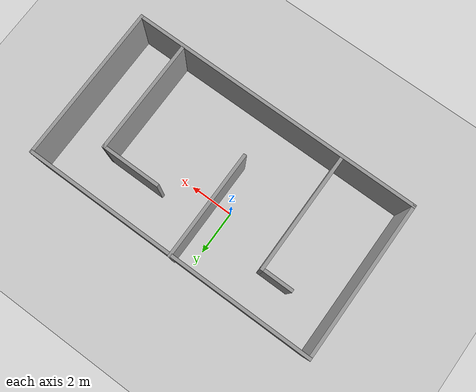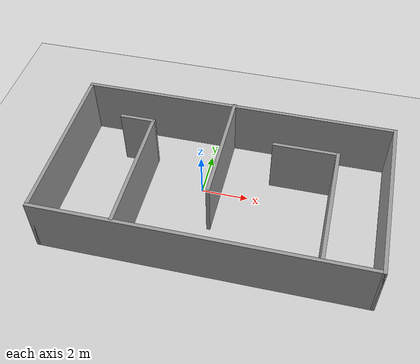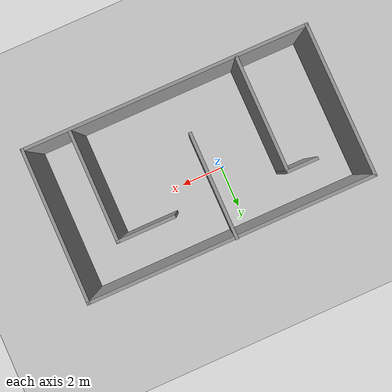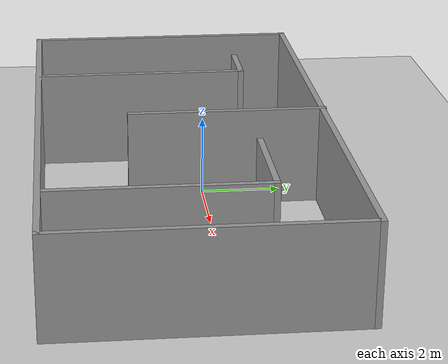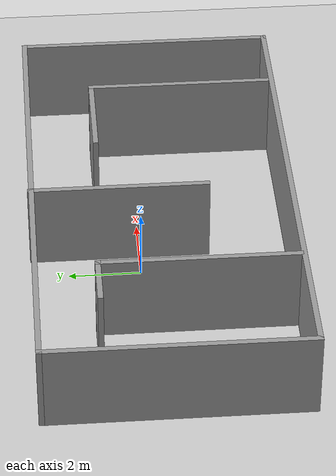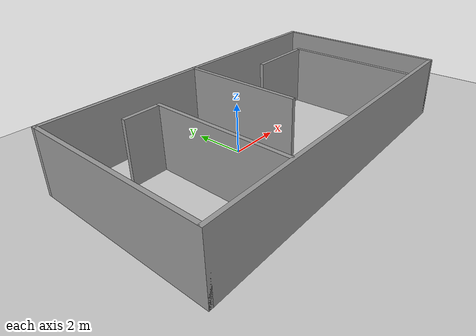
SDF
<sdf version="1.6">
 <world name="default">
  <scene><ambient>0.4 0.4 0.4 1</ambient><background>0.7 0.7 0.7 1</background><shadows>1</shadows></scene>
  <light name="sun" type="directional">
   <pose>0 0 10 0 -0 0</pose>
   <diffuse>0.8 0.8 0.8 1</diffuse>
   <specular>0.2 0.2 0.2 1</specular>
   <attenuation>
    <range>1000</range>
    <constant>0.9</constant>
    <linear>0.01</linear>
    <quadratic>0.001</quadratic>
   </attenuation>
   <direction>-0.5 0.1 -0.9</direction>
  </light>
  <model name="ground_plane">
   <static>1</static>
   <link name="link">
    <collision name="collision">
     <geometry><plane><normal>0 0 1</normal><size>100 100</size></plane></geometry>
     <surface>
      <contact><collide_bitmask>65535</collide_bitmask></contact>
      <friction><ode><mu>100</mu><mu2>50</mu2></ode></friction>
     </surface>
    </collision>
    <visual name="visual">
     <cast_shadows>0</cast_shadows>
     <geometry><plane><normal>0 0 1</normal><size>100 100</size></plane></geometry>
     <material>
      <script><uri>file://media/materials/scripts/gazebo.material</uri><name>Gazebo/Grey</name></script>
     </material>
    </visual>
   </link>
  </model>
  <physics name="default_physics" default="0" type="ode">
   <real_time_update_rate>1000</real_time_update_rate>
   <max_step_size>0.001</max_step_size>
   <real_time_factor>1</real_time_factor>
   <ode>
    <solver>
     <type>quick</type>
     <iters>150</iters>
     <precon_iters>0</precon_iters>
     <sor>1.4</sor>
     <use_dynamic_moi_rescaling>1</use_dynamic_moi_rescaling>
    </solver>
    <constraints>
     <cfm>1e-05</cfm>
     <erp>0.2</erp>
     <contact_max_correcting_vel>2000</contact_max_correcting_vel>
     <contact_surface_layer>0.01</contact_surface_layer>
    </constraints>
   </ode>
  </physics>
  <gravity>0 0 -9.8</gravity>
  <magnetic_field>6e-06 2.3e-05 -4.2e-05</magnetic_field>
  <atmosphere type="adiabatic"/>
  <audio><device>default</device></audio>
  <spherical_coordinates>
   <surface_model>EARTH_WGS84</surface_model>
   <latitude_deg>0</latitude_deg>
   <longitude_deg>0</longitude_deg>
   <elevation>0</elevation>
   <heading_deg>0</heading_deg>
  </spherical_coordinates>
  <model name="cmap1">
   <pose>0.935765 -0.595837 0 0 -0 0</pose>
   <link name="Wall_11">
    <collision name="Wall_11_Collision">
     <geometry><box><size>5 0.15 2.5</size></box></geometry>
     <pose>0 0 1.25 0 -0 0</pose>
    </collision>
    <visual name="Wall_11_Visual">
     <pose>0 0 1.25 0 -0 0</pose>
     <geometry><box><size>5 0.15 2.5</size></box></geometry>
     <material>
      <script><uri>file://media/materials/scripts/gazebo.material</uri><name>Gazebo/Grey</name></script>
      <ambient>1 1 1 1</ambient>
     </material>
     <meta><layer>0</layer></meta>
    </visual>
    <pose>-0.186641 1.14189 0 0 -0 -1.5708</pose>
   </link>
   <link name="Wall_13">
    <collision name="Wall_13_Collision">
     <geometry><box><size>5.5 0.15 2.5</size></box></geometry>
     <pose>0 0 1.25 0 -0 0</pose>
    </collision>
    <visual name="Wall_13_Visual">
     <pose>0 0 1.25 0 -0 0</pose>
     <geometry><box><size>5.5 0.15 2.5</size></box></geometry>
     <material>
      <script><uri>file://media/materials/scripts/gazebo.material</uri><name>Gazebo/Grey</name></script>
      <ambient>1 1 1 1</ambient>
     </material>
     <meta><layer>0</layer></meta>
    </visual>
    <pose>-3.33419 -0.793809 0 0 -0 1.5708</pose>
   </link>
   <link name="Wall_14">
    <collision name="Wall_14_Collision">
     <geometry><box><size>1.5 0.15 2.5</size></box></geometry>
     <pose>0 0 1.25 0 -0 0</pose>
    </collision>
    <visual name="Wall_14_Visual">
     <pose>0 0 1.25 0 -0 0</pose>
     <geometry><box><size>1.5 0.15 2.5</size></box></geometry>
     <material>
      <script><uri>file://media/materials/scripts/gazebo.material</uri><name>Gazebo/Grey</name></script>
      <ambient>1 1 1 1</ambient>
     </material>
     <meta><layer>0</layer></meta>
    </visual>
    <pose>-4.00919 1.88119 0 0 -0 3.14159</pose>
   </link>
   <link name="Wall_2">
    <collision name="Wall_2_Collision">
     <geometry><box><size>13.5 0.15 2.5</size></box></geometry>
     <pose>0 0 1.25 0 -0 0</pose>
    </collision>
    <visual name="Wall_2_Visual">
     <pose>0 0 1.25 0 -0 0</pose>
     <geometry><box><size>13.5 0.15 2.5</size></box></geometry>
     <material>
      <script><uri>file://media/materials/scripts/gazebo.material</uri><name>Gazebo/Grey</name></script>
      <ambient>1 1 1 1</ambient>
     </material>
     <meta><layer>0</layer></meta>
    </visual>
    <pose>0 3.53311 0 0 -0 3.14159</pose>
   </link>
   <link name="Wall_3">
    <collision name="Wall_3_Collision">
     <geometry><box><size>7.25 0.15 2.5</size></box></geometry>
     <pose>0 0 1.25 0 -0 0</pose>
    </collision>
    <visual name="Wall_3_Visual">
     <pose>0 0 1.25 0 -0 0</pose>
     <geometry><box><size>7.25 0.15 2.5</size></box></geometry>
     <material>
      <script><uri>file://media/materials/scripts/gazebo.material</uri><name>Gazebo/Grey</name></script>
      <ambient>1 1 1 1</ambient>
     </material>
     <meta><layer>0</layer></meta>
    </visual>
    <pose>-6.675 -0.01689 0 0 -0 -1.5708</pose>
   </link>
   <link name="Wall_4">
    <collision name="Wall_4_Collision">
     <geometry><box><size>13.5 0.15 2.5</size></box></geometry>
     <pose>0 0 1.25 0 -0 0</pose>
    </collision>
    <visual name="Wall_4_Visual">
     <pose>0 0 1.25 0 -0 0</pose>
     <geometry><box><size>13.5 0.15 2.5</size></box></geometry>
     <material>
      <script><uri>file://media/materials/scripts/gazebo.material</uri><name>Gazebo/Grey</name></script>
      <ambient>1 1 1 1</ambient>
     </material>
     <meta><layer>0</layer></meta>
    </visual>
    <pose>0 -3.56689 0 0 -0 0</pose>
   </link>
   <link name="Wall_5">
    <collision name="Wall_5_Collision">
     <geometry><box><size>7.25 0.15 2.5</size></box></geometry>
     <pose>0 0 1.25 0 -0 0</pose>
    </collision>
    <visual name="Wall_5_Visual">
     <pose>0 0 1.25 0 -0 0</pose>
     <geometry><box><size>7.25 0.15 2.5</size></box></geometry>
     <material>
      <script><uri>file://media/materials/scripts/gazebo.material</uri><name>Gazebo/Grey</name></script>
      <ambient>1 1 1 1</ambient>
     </material>
     <meta><layer>0</layer></meta>
    </visual>
    <pose>6.675 -0.01689 0 0 -0 1.5708</pose>
   </link>
   <link name="Wall_7">
    <collision name="Wall_7_Collision">
     <geometry><box><size>5.25 0.15 2.5</size></box></geometry>
     <pose>0 0 1.25 0 -0 0</pose>
    </collision>
    <visual name="Wall_7_Visual">
     <pose>0 0 1.25 0 -0 0</pose>
     <geometry><box><size>5.25 0.15 2.5</size></box></geometry>
     <material>
      <script><uri>file://media/materials/scripts/gazebo.material</uri><name>Gazebo/Grey</name></script>
      <ambient>1 1 1 1</ambient>
     </material>
     <meta><layer>0</layer></meta>
    </visual>
    <pose>4.50076 -0.879853 0 0 -0 1.5708</pose>
   </link>
   <link name="Wall_8">
    <collision name="Wall_8_Collision">
     <geometry><box><size>2.75 0.15 2.5</size></box></geometry>
     <pose>0 0 1.25 0 -0 0</pose>
    </collision>
    <visual name="Wall_8_Visual">
     <pose>0 0 1.25 0 -0 0</pose>
     <geometry><box><size>2.75 0.15 2.5</size></box></geometry>
     <material>
      <script><uri>file://media/materials/scripts/gazebo.material</uri><name>Gazebo/Grey</name></script>
      <ambient>1 1 1 1</ambient>
     </material>
     <meta><layer>0</layer></meta>
    </visual>
    <pose>3.20076 1.67015 0 0 -0 3.14159</pose>
   </link>
   <static>1</static>
  </model>
 </world>
</sdf>
